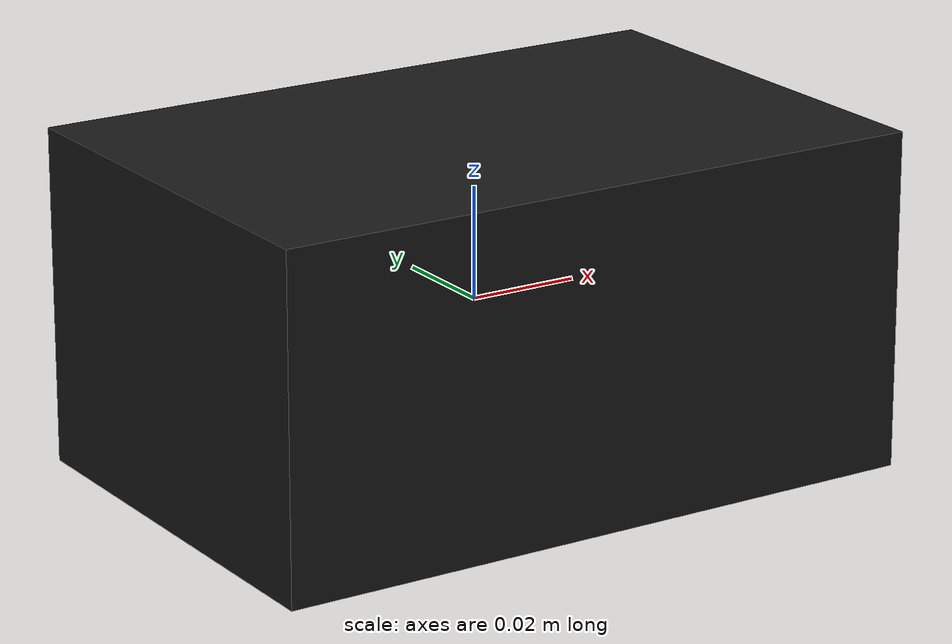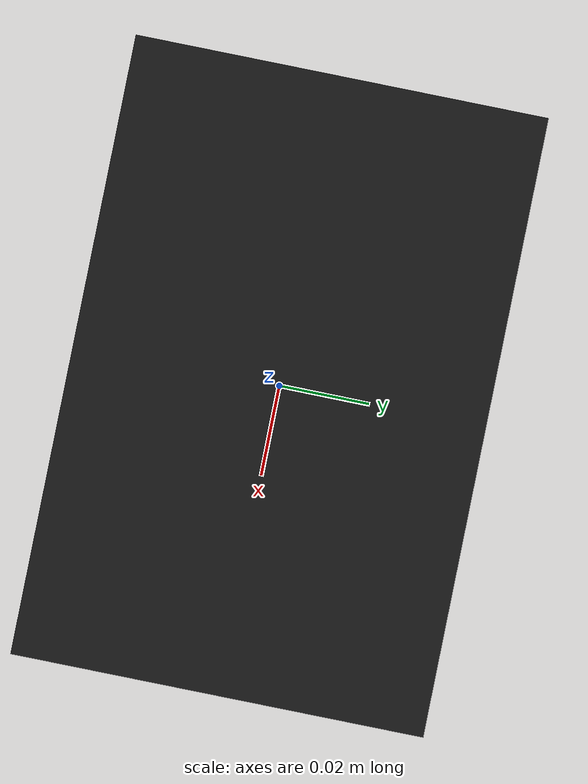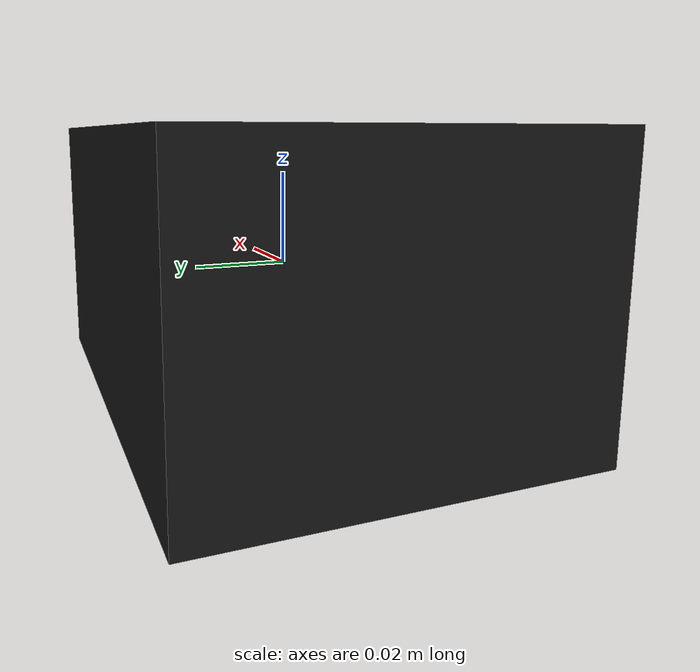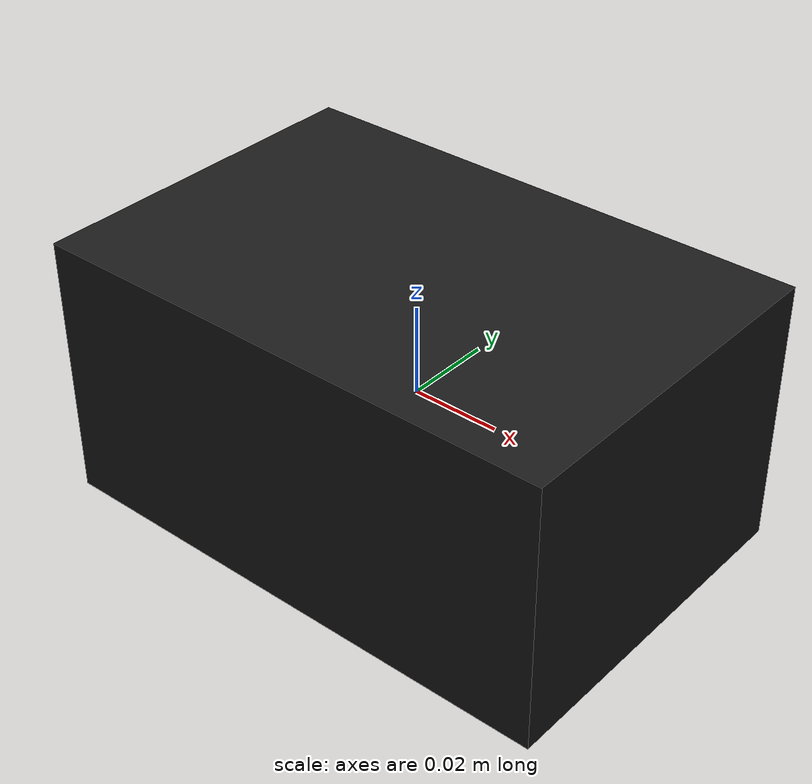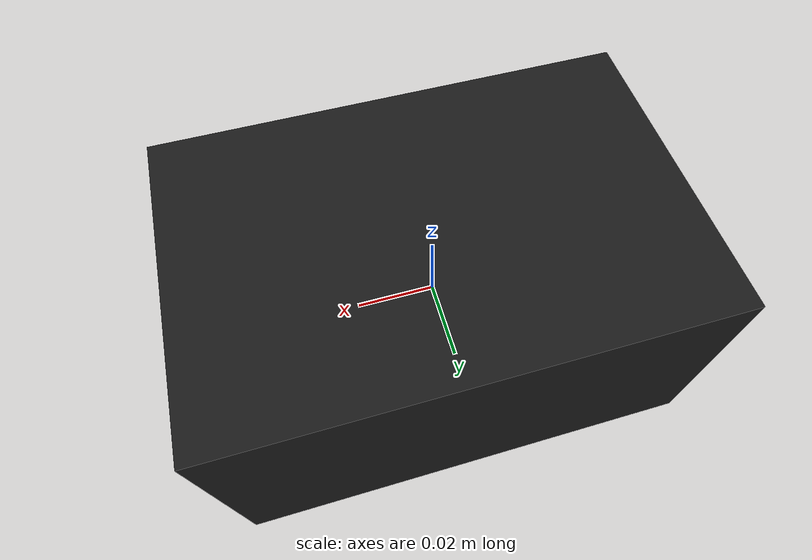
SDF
<?xml version="1.0" ?>
<sdf version="1.9">
  <model name="sim_gimbal_camera">
    <static>true</static>
    <self_collide>false</self_collide>

    <link name="camera_link">
      <gravity>false</gravity>
      <kinematic>true</kinematic>
      <inertial>
        <mass>0.25</mass>
        <inertia>
          <ixx>0.0004</ixx>
          <iyy>0.0004</iyy>
          <izz>0.0004</izz>
          <ixy>0.0</ixy>
          <ixz>0.0</ixz>
          <iyz>0.0</iyz>
        </inertia>
      </inertial>

      <visual name="camera_visual">
        <geometry>
          <box>
            <size>0.12 0.08 0.06</size>
          </box>
        </geometry>
        <material>
          <ambient>0.1 0.1 0.1 1</ambient>
          <diffuse>0.1 0.1 0.1 1</diffuse>
        </material>
      </visual>

      <sensor name="camera" type="camera">
        <always_on>1</always_on>
        <update_rate>1</update_rate>
        <visualize>true</visualize>
        <pose>0.06 0 0 0 0 0</pose>
        <camera>
          <horizontal_fov>1.3962634</horizontal_fov>
          <image>
            <width>3840</width>
            <height>2160</height>
            <format>R8G8B8</format>
          </image>
          <clip>
            <near>0.05</near>
            <far>400.0</far>
          </clip>
        </camera>
      </sensor>
    </link>
  </model>
</sdf>
